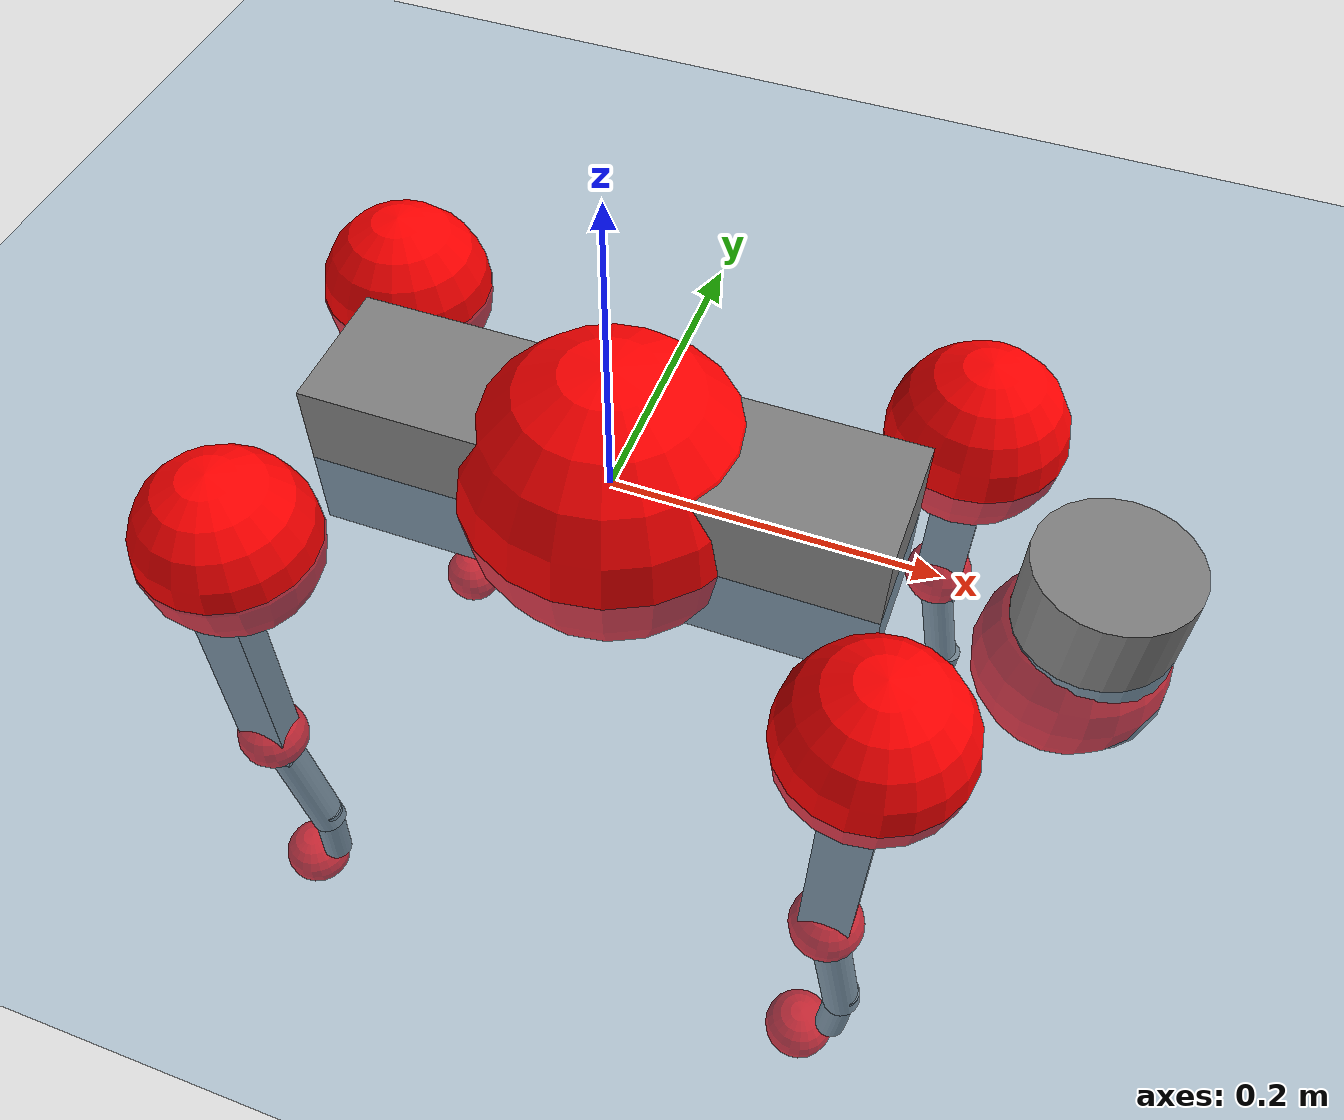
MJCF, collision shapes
<mujoco model="go2">
  <compiler angle="radian" assetdir="assets" balanceinertia="true" inertiafromgeom="false"/>

  <option timestep="0.005" density="1.2" viscosity="2e-05"/>

  <size nkey="1"/>

  <visual>
    <quality shadowsize="8192"/>
    <map shadowclip="0.5"/>
  </visual>

  <default>
    <default class="/">
      <geom contype="0" conaffinity="0" group="1" solref="-1000 -80"/>
      <site size="0.01 0.005 0.005" group="5"/>
      <general forcelimited="true" biastype="affine" gainprm="20" biasprm="0 -20 -0.5"/>
      <default class="go2">
        <joint armature="0.01" damping="0.01" frictionloss="0.2"/>
        <geom condim="1" margin="0.001"/>
        <default class="visual">
          <geom type="mesh" group="2"/>
        </default>
        <default class="collision">
          <geom group="3"/>
          <default class="foot">
            <geom size="0.022 0 0" condim="6" priority="1" friction="0.8 0.02 0.01" solimp="0.015 1 0.022"/>
          </default>
        </default>
        <default class="reward_collision_sphere">
          <geom group="5" rgba="1 0 0 1"/>
        </default>
      </default>
    </default>
  </default>

  <asset>
    <texture type="skybox" colorspace="auto" name="//unnamed_texture_0" builtin="gradient" rgb1="0.95 0.95 0.95" rgb2="0.95 0.95 0.95" width="100" height="600"/>
    <texture type="2d" colorspace="auto" name="texplane" builtin="checker" rgb1="0.345 0.575 0.748" rgb2="0.345 0.575 0.748" markrgb="1 1 1" width="512" height="512"/>
    <material name="MatPlane" class="/" texture="texplane" texuniform="true" texrepeat="2 2" specular="0.9"/>
    <material name="metal" class="/" rgba="0.9 0.95 0.95 1"/>
    <material name="black" class="/" rgba="0 0 0 1"/>
    <material name="white" class="/"/>
    <material name="gray" class="/" rgba="0.671705 0.692426 0.77427 1"/>
    <mesh name="base_0" class="/" file="base_0.obj"/>
    <mesh name="base_1" class="/" file="base_1.obj"/>
    <mesh name="base_2" class="/" file="base_2.obj"/>
    <mesh name="base_3" class="/" file="base_3.obj"/>
    <mesh name="base_4" class="/" file="base_4.obj"/>
    <mesh name="hip_0" class="/" file="hip_0.obj"/>
    <mesh name="hip_1" class="/" file="hip_1.obj"/>
    <mesh name="thigh_0" class="/" file="thigh_0.obj"/>
    <mesh name="thigh_1" class="/" file="thigh_1.obj"/>
    <mesh name="thigh_mirror_0" class="/" file="thigh_mirror_0.obj"/>
    <mesh name="thigh_mirror_1" class="/" file="thigh_mirror_1.obj"/>
    <mesh name="calf_0" class="/" file="calf_0.obj"/>
    <mesh name="calf_1" class="/" file="calf_1.obj"/>
    <mesh name="calf_mirror_0" class="/" file="calf_mirror_0.obj"/>
    <mesh name="calf_mirror_1" class="/" file="calf_mirror_1.obj"/>
    <mesh name="foot" class="/" file="foot.obj"/>
  </asset>

  <worldbody>
    <geom name="floor" class="/" size="100 100 0.125" type="plane" group="0" material="MatPlane"/>
    <light name="toplight_shadow" class="/" pos="0 0 5" dir="0.0990148 0.0990148 -0.990148" type="directional" ambient="0.04 0.04 0.04" diffuse="0.55 0.55 0.55" specular="0.12 0.12 0.12"/>
    <light name="toplight_fill" class="/" pos="0 0 5" dir="0.0990148 0.0990148 -0.990148" type="directional" castshadow="false" ambient="0.04 0.04 0.04" diffuse="0.3 0.3 0.3" specular="0.08 0.08 0.08"/>
    <body name="trunk" childclass="go2" pos="0.000680027 0.000128391 -0.00101581" quat="1 -0.000413906 0.000169603 -6.75336e-05">
      <inertial pos="0.0186534 -0.00159142 -0.0033661" quat="-7.73178e-05 0.713216 0.000201623 0.700945" mass="5.87968" diaginertia="0.110687 0.101279 0.00819121"/>
      <joint name="//unnamed_joint_0" type="free" armature="0" damping="0" frictionloss="0"/>
      <geom name="//unnamed_geom_1" class="visual" material="black" mesh="base_0"/>
      <geom name="//unnamed_geom_2" class="visual" material="black" mesh="base_1"/>
      <geom name="//unnamed_geom_3" class="visual" material="black" mesh="base_2"/>
      <geom name="//unnamed_geom_4" class="visual" material="white" mesh="base_3"/>
      <geom name="//unnamed_geom_5" class="visual" material="gray" mesh="base_4"/>
      <geom name="trunk_1" class="collision" size="0.176374 0.0438357 0.0534467" type="box"/>
      <geom name="trunk_2" class="collision" size="0.0468831 0.0421948" pos="0.286501 0 0.00803032" type="cylinder"/>
      <geom name="trunk_3" class="collision" size="0.0440701" pos="0.294543 0 -0.0481819"/>
      <geom name="//unnamed_geom_9" class="reward_collision_sphere" size="0.0937662"/>
      <geom name="//unnamed_geom_10" class="reward_collision_sphere" size="0.0562597" pos="0.281475 0 -0.0361365"/>
      <site name="imu" pos="-0.0160488 -0.000396329 0.0244171" size="0.00937662"/>
      <camera name="track" pos="0 -2.00937 0" quat="0.707107 0.707107 0 0" mode="trackcom"/>
      <camera name="ego_camera" pos="0.313643 0 0.0361365" quat="-0.5 -0.5 0.5 0.5"/>
      <body name="FL_hip" pos="0.192847 0.0458732 0.00136771" quat="1 -9.0057e-06 8.19584e-05 3.56199e-06">
        <inertial pos="-0.00530877 0.00163002 -0.000486171" quat="0.49643 0.499633 0.505363 0.49853" mass="0.537863" diaginertia="0.000877162 0.000583661 0.0001554"/>
        <joint name="FL_hip_joint" pos="0 0 0" axis="1 0.000590804 0.000116248" range="-1.04713 1.02976" armature="0.00936582" damping="0.00288438" frictionloss="0.185967"/>
        <geom name="//unnamed_geom_11" class="visual" material="metal" mesh="hip_0"/>
        <geom name="//unnamed_geom_12" class="visual" material="gray" mesh="hip_1"/>
        <geom name="//unnamed_geom_13" class="collision" size="0.0431324 0.0187532" pos="0 0.0803749 0" quat="0.707107 0.707107 0 0" type="cylinder"/>
        <geom name="//unnamed_geom_14" class="reward_collision_sphere" size="0.0562597" pos="0 0.0703281 0"/>
        <body name="FL_thigh" pos="-0.00045509 0.0975148 0.00159587" quat="1 7.7515e-05 8.36646e-05 0.000846057">
          <inertial pos="-0.00394221 -0.0224126 -0.026634" quat="0.831907 0.0855649 -0.0196115 0.547928" mass="0.938646" diaginertia="0.00607917 0.00577197 0.000288198"/>
          <joint name="FL_thigh_joint" pos="0 0 0" axis="0.00988864 0.999948 -0.00244999" stiffness="0.00257715" range="-1.53585 3.4955" armature="0.00968348" damping="0.00988851" frictionloss="0.19118"/>
          <geom name="//unnamed_geom_15" class="visual" material="metal" mesh="thigh_0"/>
          <geom name="//unnamed_geom_16" class="visual" material="gray" mesh="thigh_1"/>
          <geom name="//unnamed_geom_17" class="collision" size="0.099861 0.0114864 0.0159402" pos="0 0 -0.085523" quat="0.707107 0 0.707107 0" type="box"/>
          <body name="FL_calf" pos="-0.00088019 0.000509295 -0.171149" quat="1 -7.78724e-05 -3.68912e-06 1.0751e-05">
            <inertial pos="0.00662661 -0.000912234 -0.112355" quat="0.711283 0.000123948 -0.00432766 0.702893" mass="0.199031" diaginertia="0.00150507 0.00150789 1.76762e-05"/>
            <joint name="FL_calf_joint" pos="0 0 0" axis="0.00506528 0.999984 0.00232061" range="-2.72311 -0.84244" armature="0.00893091" damping="0.00108593" frictionloss="0.184729"/>
            <geom name="//unnamed_geom_18" class="visual" material="gray" mesh="calf_0"/>
            <geom name="//unnamed_geom_19" class="visual" material="black" mesh="calf_1"/>
            <geom name="FL_calf0" class="collision" size="0.0112519 0.0562597" pos="0.00804213 0 -0.0481819" quat="0.994493 0 -0.104807 0" type="cylinder"/>
            <geom name="//unnamed_geom_21" class="collision" size="0.0103143 0.030474" pos="0.0201053 0 -0.118849" quat="0.999688 0 0.0249974 0" type="cylinder"/>
            <geom name="//unnamed_geom_22" class="visual" pos="0 0 -0.171046" quat="1 0 0 0" material="black" mesh="foot"/>
            <geom name="FL_foot" class="foot" size="0.0176584" pos="-0.00201053 0 -0.171046"/>
            <geom name="//unnamed_geom_24" class="reward_collision_sphere" size="0.0234415"/>
            <geom name="//unnamed_geom_25" class="reward_collision_sphere" size="0.0234415" pos="-0.00201053 0 -0.171046"/>
            <site name="FL_foot" class="foot" pos="-0.00201053 0 -0.171046" size="0.00937662"/>
          </body>
        </body>
      </body>
      <body name="FR_hip" pos="0.193077 -0.0477191 0.000937157" quat="1 4.12115e-05 5.96909e-05 -7.078e-06">
        <inertial pos="-0.00509591 -0.00420672 -0.000516956" quat="0.501495 0.512828 0.494466 0.490933" mass="0.556486" diaginertia="0.000897457 0.00062543 0.000159063"/>
        <joint name="FR_hip_joint" pos="0 0 0" axis="0.99996 0.00698827 0.00558174" range="-1.04972 1.05136" armature="0.00948842" damping="0.00458347" frictionloss="0.177975"/>
        <geom name="//unnamed_geom_26" class="visual" pos="0 1.75673e-09 7.53496e-08" quat="4.63268e-05 1 0 0" material="metal" mesh="hip_0"/>
        <geom name="//unnamed_geom_27" class="visual" pos="0 2.84786e-09 -1.86368e-07" quat="4.63268e-05 1 0 0" material="gray" mesh="hip_1"/>
        <geom name="//unnamed_geom_28" class="collision" size="0.0431324 0.0187532" pos="0 -0.0803749 0" quat="0.707107 0.707107 0 0" type="cylinder"/>
        <geom name="//unnamed_geom_29" class="reward_collision_sphere" size="0.0562597" pos="0 -0.0703281 0"/>
        <body name="FR_thigh" pos="-5.80482e-05 -0.0962665 -0.00130002" quat="1 0.000150678 0.000181812 -0.000697882">
          <inertial pos="-0.00164915 0.0234274 -0.0258081" quat="0.552492 -0.0191033 0.0846861 0.828985" mass="0.962199" diaginertia="0.00611893 0.00589273 0.000300997"/>
          <joint name="FR_thigh_joint" pos="0 0 0" axis="0.00298284 -0.999995 0.000581227" range="-3.51159 1.57735" armature="0.00935339" damping="0.00997437" frictionloss="0.178555"/>
          <geom name="//unnamed_geom_30" class="visual" material="metal" mesh="thigh_mirror_0"/>
          <geom name="//unnamed_geom_31" class="visual" material="gray" mesh="thigh_mirror_1"/>
          <geom name="//unnamed_geom_32" class="collision" size="0.099861 0.0114864 0.0159402" pos="0 0 -0.085523" quat="0.707107 0 0.707107 0" type="box"/>
          <body name="FR_calf" pos="0.000355334 -0.000381068 -0.169975" quat="1 -2.81578e-05 -0.000127855 3.80377e-05">
            <inertial pos="0.00552352 0.000738951 -0.113982" quat="0.710757 -0.00083283 0.00285137 0.703431" mass="0.200523" diaginertia="0.00152856 0.00153232 1.79897e-05"/>
            <joint name="FR_calf_joint" pos="0 0 0" axis="0.000181919 -0.999999 0.00117551" range="0.796586 2.72862" armature="0.00991781" damping="0.0178794" frictionloss="0.17919"/>
            <geom name="//unnamed_geom_33" class="visual" material="gray" mesh="calf_mirror_0"/>
            <geom name="//unnamed_geom_34" class="visual" material="black" mesh="calf_mirror_1"/>
            <geom name="FR_calf0" class="collision" size="0.0121896 0.0562597" pos="0.0100527 0 -0.0481819" quat="0.995004 0 -0.0998334 0" type="cylinder"/>
            <geom name="//unnamed_geom_36" class="collision" size="0.0103143 0.030474" pos="0.0201053 0 -0.118849" quat="0.999688 0 0.0249974 0" type="cylinder"/>
            <geom name="//unnamed_geom_37" class="visual" pos="0 0 -0.171046" quat="1 0 0 0" material="black" mesh="foot"/>
            <geom name="FR_foot" class="foot" size="0.0217032" pos="-0.00201053 0 -0.171046"/>
            <geom name="//unnamed_geom_39" class="reward_collision_sphere" size="0.0234415"/>
            <geom name="//unnamed_geom_40" class="reward_collision_sphere" size="0.0234415" pos="-0.00201053 0 -0.171046"/>
            <site name="FR_foot" class="foot" pos="-0.00201053 0 -0.171046" size="0.00937662"/>
          </body>
        </body>
      </body>
      <body name="RL_hip" pos="-0.192769 0.0470691 -0.00250681" quat="1 8.5399e-05 0.000323056 9.47728e-05">
        <inertial pos="0.00560273 0.00250619 -0.00205232" quat="0.503162 0.498673 0.49484 0.503277" mass="0.573346" diaginertia="0.000958863 0.000628734 0.000165504"/>
        <joint name="RL_hip_joint" pos="0 0 0" axis="-0.999823 -0.0106715 -0.0154936" stiffness="0.00373166" range="-1.04221 1.02753" armature="0.00918289" damping="0" frictionloss="0.187158"/>
        <geom name="//unnamed_geom_41" class="visual" pos="-1.76178e-09 0 -3.45349e-07" quat="4.63268e-05 0 1 0" material="metal" mesh="hip_0"/>
        <geom name="//unnamed_geom_42" class="visual" pos="-2.85605e-09 0 -3.06275e-07" quat="4.63268e-05 0 1 0" material="gray" mesh="hip_1"/>
        <geom name="//unnamed_geom_43" class="collision" size="0.0431324 0.0187532" pos="0 0.0803749 0" quat="0.707107 0.707107 0 0" type="cylinder"/>
        <geom name="//unnamed_geom_44" class="reward_collision_sphere" size="0.0562597" pos="0 0.0703281 0"/>
        <body name="RL_thigh" pos="-0.000227376 0.0971259 -0.000642726" quat="1 0.000165353 -6.00969e-05 -0.000522357">
          <inertial pos="-0.00602062 -0.0232943 -0.0284646" quat="0.829762 0.084373 -0.0209664 0.551305" mass="0.956598" diaginertia="0.00590319 0.00597793 0.000288215"/>
          <joint name="RL_thigh_joint" pos="0 0 0" axis="-0.0067771 0.999975 0.00206358" stiffness="0.0123047" range="-0.508729 4.534" armature="0.00926898" damping="0.0015291" frictionloss="0.188966"/>
          <geom name="//unnamed_geom_45" class="visual" material="metal" mesh="thigh_0"/>
          <geom name="//unnamed_geom_46" class="visual" material="gray" mesh="thigh_1"/>
          <geom name="//unnamed_geom_47" class="collision" size="0.099861 0.0114864 0.0159402" pos="0 0 -0.085523" quat="0.707107 0 0.707107 0" type="box"/>
          <body name="RL_calf" pos="0.00108682 -0.000832425 -0.170076" quat="1 -3.70569e-05 -5.25929e-05 -4.98468e-05">
            <inertial pos="0.00563726 0.00120628 -0.11241" quat="0.710465 0.00171158 -0.00454392 0.703715" mass="0.205345" diaginertia="0.00157111 0.00157184 1.80659e-05"/>
            <joint name="RL_calf_joint" pos="0 0 0" axis="-0.00271879 0.999909 0.0132216" range="-2.69236 -0.845907" armature="0.0102649" damping="0.00996533" frictionloss="0.176202"/>
            <geom name="//unnamed_geom_48" class="visual" material="gray" mesh="calf_0"/>
            <geom name="//unnamed_geom_49" class="visual" material="black" mesh="calf_1"/>
            <geom name="RL_calf0" class="collision" size="0.0121896 0.0562597" pos="0.0100527 0 -0.0481819" quat="0.995004 0 -0.0998334 0" type="cylinder"/>
            <geom name="//unnamed_geom_51" class="collision" size="0.0103143 0.030474" pos="0.0201053 0 -0.118849" quat="0.999688 0 0.0249974 0" type="cylinder"/>
            <geom name="//unnamed_geom_52" class="visual" pos="0 0 -0.171046" quat="1 0 0 0" material="black" mesh="foot"/>
            <geom name="RL_foot" class="foot" size="0.0179551" pos="-0.00201053 0 -0.171046"/>
            <geom name="//unnamed_geom_54" class="reward_collision_sphere" size="0.0234415"/>
            <geom name="//unnamed_geom_55" class="reward_collision_sphere" size="0.0234415" pos="-0.00201053 0 -0.171046"/>
            <site name="RL_foot" class="foot" pos="-0.00201053 0 -0.171046" size="0.00937662"/>
          </body>
        </body>
      </body>
      <body name="RR_hip" pos="-0.192092 -0.0469488 -0.0026086" quat="1 -9.20813e-06 -3.64269e-06 -2.46005e-05">
        <inertial pos="0.00556366 -0.00246648 -0.00216497" quat="0.489543 0.500487 0.504586 0.505227" mass="0.551069" diaginertia="0.000881443 0.000590105 0.000155898"/>
        <joint name="RR_hip_joint" pos="0 0 0" axis="-0.99995 -0.00521107 0.00849919" stiffness="0.000934117" range="-1.07903 1.03268" armature="0.00981216" damping="0.00742536" frictionloss="0.188581"/>
        <geom name="//unnamed_geom_56" class="visual" pos="1.76176e-09 1.75673e-09 -4.20698e-07" quat="2.14617e-09 4.63268e-05 4.63268e-05 -1" material="metal" mesh="hip_0"/>
        <geom name="//unnamed_geom_57" class="visual" pos="2.8561e-09 2.84786e-09 -1.19907e-07" quat="2.14617e-09 4.63268e-05 4.63268e-05 -1" material="gray" mesh="hip_1"/>
        <geom name="//unnamed_geom_58" class="collision" size="0.0431324 0.0187532" pos="0 -0.0803749 0" quat="0.707107 0.707107 0 0" type="cylinder"/>
        <geom name="//unnamed_geom_59" class="reward_collision_sphere" size="0.0562597" pos="0 -0.0703281 0"/>
        <body name="RR_thigh" pos="0.00224176 -0.0965973 -0.00186959" quat="1 -0.000444647 0.000167049 -0.000470855">
          <inertial pos="-0.00385723 0.0221443 -0.0269515" quat="0.551639 -0.019708 0.0846262 0.829544" mass="0.941782" diaginertia="0.00605326 0.00594522 0.000292102"/>
          <joint name="RR_thigh_joint" pos="0 0 0" axis="-0.00603673 -0.999978 0.00284538" range="-4.54445 0.543343" armature="0.00936898" damping="0.00997284" frictionloss="0.18612"/>
          <geom name="//unnamed_geom_60" class="visual" material="metal" mesh="thigh_mirror_0"/>
          <geom name="//unnamed_geom_61" class="visual" material="gray" mesh="thigh_mirror_1"/>
          <geom name="//unnamed_geom_62" class="collision" size="0.099861 0.0114864 0.0159402" pos="0 0 -0.085523" quat="0.707107 0 0.707107 0" type="box"/>
          <body name="RR_calf" pos="-0.000586197 0.00145227 -0.170854" quat="1 0.000329115 -0.000564422 -0.000640282">
            <inertial pos="0.00721021 0.00152749 -0.114411" quat="0.700602 -0.00441523 0.00070148 0.713538" mass="0.202392" diaginertia="0.00155 0.00149905 1.79353e-05"/>
            <joint name="RR_calf_joint" pos="0 0 0" axis="-0.00237562 -0.999991 -0.00362894" range="0.843483 2.76202" armature="0.0093546" damping="0.0159937" frictionloss="0.178849"/>
            <geom name="//unnamed_geom_63" class="visual" material="gray" mesh="calf_mirror_0"/>
            <geom name="//unnamed_geom_64" class="visual" material="black" mesh="calf_mirror_1"/>
            <geom name="RR_calf0" class="collision" size="0.0121896 0.0562597" pos="0.0100527 0 -0.0481819" quat="0.995004 0 -0.0998334 0" type="cylinder"/>
            <geom name="//unnamed_geom_66" class="collision" size="0.0103143 0.030474" pos="0.0201053 0 -0.118849" quat="0.999688 0 0.0249974 0" type="cylinder"/>
            <geom name="//unnamed_geom_67" class="visual" pos="0 0 -0.171046" quat="1 0 0 0" material="black" mesh="foot"/>
            <geom name="RR_foot" class="foot" size="0.0217545" pos="-0.00201053 0 -0.171046"/>
            <geom name="//unnamed_geom_69" class="reward_collision_sphere" size="0.0234415"/>
            <geom name="//unnamed_geom_70" class="reward_collision_sphere" size="0.0234415" pos="-0.00201053 0 -0.171046"/>
            <site name="RR_foot" class="foot" pos="-0.00201053 0 -0.171046" size="0.00937662"/>
          </body>
        </body>
      </body>
    </body>
  </worldbody>

  <contact>
    <pair class="/" geom1="floor" geom2="FL_foot" name="//unnamed_contact_0"/>
    <pair class="/" geom1="floor" geom2="FR_foot" name="//unnamed_contact_1"/>
    <pair class="/" geom1="floor" geom2="RL_foot" name="//unnamed_contact_2"/>
    <pair class="/" geom1="floor" geom2="RR_foot" name="//unnamed_contact_3"/>
  </contact>

  <actuator>
    <general name="FL_hip" class="/" joint="FL_hip_joint" forcerange="-21.3918 21.3918" gainprm="19.0529" biasprm="0 -19.0529 -0.474215"/>
    <general name="FL_thigh" class="/" joint="FL_thigh_joint" forcerange="-20.521 20.521" gainprm="19.0529" biasprm="0 -19.0529 -0.474215"/>
    <general name="FL_calf" class="/" joint="FL_calf_joint" forcerange="-44.0322 44.0322" gainprm="19.0529" biasprm="0 -19.0529 -0.474215"/>
    <general name="FR_hip" class="/" joint="FR_hip_joint" forcerange="-21.9569 21.9569" gainprm="19.0529" biasprm="0 -19.0529 -0.474215"/>
    <general name="FR_thigh" class="/" joint="FR_thigh_joint" forcerange="-22.528 22.528" gainprm="19.0529" biasprm="0 -19.0529 -0.474215"/>
    <general name="FR_calf" class="/" joint="FR_calf_joint" forcerange="-42.6719 42.6719" gainprm="19.0529" biasprm="0 -19.0529 -0.474215"/>
    <general name="RL_hip" class="/" joint="RL_hip_joint" forcerange="-22.1284 22.1284" gainprm="19.0529" biasprm="0 -19.0529 -0.474215"/>
    <general name="RL_thigh" class="/" joint="RL_thigh_joint" forcerange="-21.7993 21.7993" gainprm="19.0529" biasprm="0 -19.0529 -0.474215"/>
    <general name="RL_calf" class="/" joint="RL_calf_joint" forcerange="-40.9653 40.9653" gainprm="19.0529" biasprm="0 -19.0529 -0.474215"/>
    <general name="RR_hip" class="/" joint="RR_hip_joint" forcerange="-21.9476 21.9476" gainprm="19.0529" biasprm="0 -19.0529 -0.474215"/>
    <general name="RR_thigh" class="/" joint="RR_thigh_joint" forcerange="-23.4345 23.4345" gainprm="19.0529" biasprm="0 -19.0529 -0.474215"/>
    <general name="RR_calf" class="/" joint="RR_calf_joint" forcerange="-41.5401 41.5401" gainprm="19.0529" biasprm="0 -19.0529 -0.474215"/>
  </actuator>

  <sensor>
    <gyro site="imu" name="imu_angular_velocity"/>
    <velocimeter site="imu" name="imu_linear_velocity"/>
    <framelinvel objtype="site" objname="FL_foot" name="FL_foot_global_linear_velocity"/>
    <framelinvel objtype="site" objname="FR_foot" name="FR_foot_global_linear_velocity"/>
    <framelinvel objtype="site" objname="RL_foot" name="RL_foot_global_linear_velocity"/>
    <framelinvel objtype="site" objname="RR_foot" name="RR_foot_global_linear_velocity"/>
  </sensor>

  <keyframe>
    <key name="home" qpos="0 0 0.325 1 0 0 0 0.1 0.8 -1.5 -0.1 -0.8 1.5 -0.1 0.8 -1.5 0.1 -0.8 1.5"/>
  </keyframe>
</mujoco>
